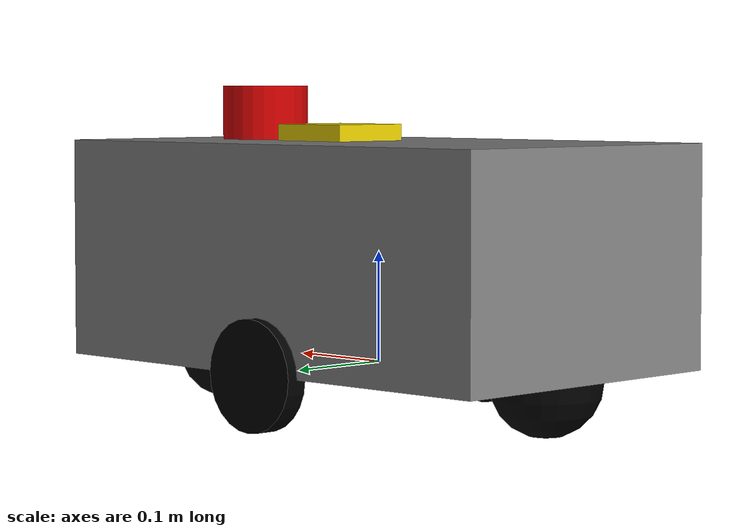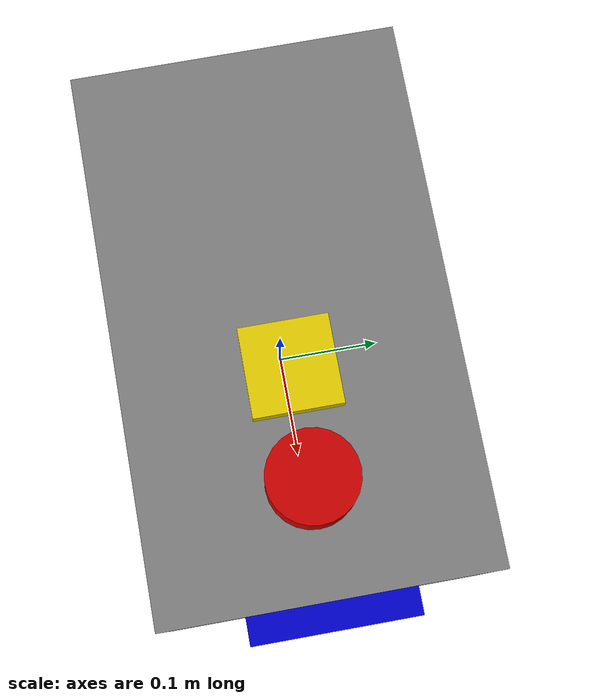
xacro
<?xml version="1.0"?>
<robot name="unknown_robot2" xmlns:xacro="http://www.ros.org/wiki/xacro">

  <!-- Materials -->
  <material name="black">
    <color rgba="0.0 0.0 0.0 1.0"/>
  </material>

  <material name="gray">
    <color rgba="0.5 0.5 0.5 1.0"/>
  </material>

  <material name="red">
    <color rgba="0.8 0.0 0.0 1.0"/>
  </material>

  <material name="blue">
    <color rgba="0.0 0.0 0.8 1.0"/>
  </material>

  <material name="green">
    <color rgba="0.0 0.8 0.0 1.0"/>
  </material>

  <material name="yellow">
    <color rgba="0.9 0.8 0.0 1.0"/>
  </material>

  <!-- Robot Properties -->
  <xacro:property name="base_length" value="0.50"/>
  <xacro:property name="base_width" value="0.30"/>
  <xacro:property name="base_height" value="0.20"/>

  <xacro:property name="wheel_radius" value="0.05"/>
  <xacro:property name="wheel_width" value="0.02"/>
  <xacro:property name="wheel_separation" value="0.30"/>

  <!-- Base Footprint -->
  <link name="base_footprint"/>

  <joint name="base_footprint_joint" type="fixed">
    <parent link="base_footprint"/>
    <child link="base_link"/>
    <origin xyz="0 0 0.10" rpy="0 0 0"/>
  </joint>

  <!-- Base Link -->
  <link name="base_link">
    <visual>
      <geometry>
        <box size="${base_length} ${base_width} ${base_height}"/>
      </geometry>
      <material name="gray"/>
    </visual>

    <collision>
      <geometry>
        <box size="${base_length} ${base_width} ${base_height}"/>
      </geometry>
    </collision>

    <inertial>
      <mass value="5.0"/>
      <origin xyz="0 0 0"/>
      <inertia
        ixx="0.02" ixy="0.0" ixz="0.0"
        iyy="0.02" iyz="0.0"
        izz="0.04"/>
    </inertial>
  </link>

  <!-- Left Drive Wheel -->
  <link name="left_wheel">
    <visual>
      <origin xyz="0 0 0" rpy="1.5708 0 0"/>
      <geometry>
        <cylinder radius="${wheel_radius}" length="${wheel_width}"/>
      </geometry>
      <material name="black"/>
    </visual>

    <collision>
      <origin xyz="0 0 0" rpy="1.5708 0 0"/>
      <geometry>
        <cylinder radius="${wheel_radius}" length="${wheel_width}"/>
      </geometry>
    </collision>

    <inertial>
      <mass value="0.2"/>
      <origin xyz="0 0 0"/>
      <inertia
        ixx="0.001" ixy="0.0" ixz="0.0"
        iyy="0.001" iyz="0.0"
        izz="0.002"/>
    </inertial>
  </link>

  <joint name="left_wheel_joint" type="continuous">
    <parent link="base_link"/>
    <child link="left_wheel"/>
    <origin xyz="0 0.15 -0.10" rpy="0 0 0"/>
    <axis xyz="0 1 0"/>
  </joint>

  <!-- Right Drive Wheel -->
  <link name="right_wheel">
    <visual>
      <origin xyz="0 0 0" rpy="1.5708 0 0"/>
      <geometry>
        <cylinder radius="${wheel_radius}" length="${wheel_width}"/>
      </geometry>
      <material name="black"/>
    </visual>

    <collision>
      <origin xyz="0 0 0" rpy="1.5708 0 0"/>
      <geometry>
        <cylinder radius="${wheel_radius}" length="${wheel_width}"/>
      </geometry>
    </collision>

    <inertial>
      <mass value="0.2"/>
      <origin xyz="0 0 0"/>
      <inertia
        ixx="0.001" ixy="0.0" ixz="0.0"
        iyy="0.001" iyz="0.0"
        izz="0.002"/>
    </inertial>
  </link>

  <joint name="right_wheel_joint" type="continuous">
    <parent link="base_link"/>
    <child link="right_wheel"/>
    <origin xyz="0 -0.15 -0.10" rpy="0 0 0"/>
    <axis xyz="0 1 0"/>
  </joint>

  <!-- Front Caster -->
  <link name="front_caster">
    <visual>
      <geometry>
        <sphere radius="0.05"/>
      </geometry>
      <material name="black"/>
    </visual>

    <collision>
      <geometry>
        <sphere radius="0.05"/>
      </geometry>
    </collision>

    <inertial>
      <mass value="0.1"/>
      <origin xyz="0 0 0"/>
      <inertia
        ixx="0.0005" ixy="0.0" ixz="0.0"
        iyy="0.0005" iyz="0.0"
        izz="0.0005"/>
    </inertial>
  </link>

  <joint name="front_caster_joint" type="fixed">
    <parent link="base_link"/>
    <child link="front_caster"/>
    <origin xyz="0.20 0 -0.10" rpy="0 0 0"/>
  </joint>

  <!-- Rear Caster -->
  <link name="rear_caster">
    <visual>
      <geometry>
        <sphere radius="0.05"/>
      </geometry>
      <material name="black"/>
    </visual>

    <collision>
      <geometry>
        <sphere radius="0.05"/>
      </geometry>
    </collision>

    <inertial>
      <mass value="0.1"/>
      <origin xyz="0 0 0"/>
      <inertia
        ixx="0.0005" ixy="0.0" ixz="0.0"
        iyy="0.0005" iyz="0.0"
        izz="0.0005"/>
    </inertial>
  </link>

  <joint name="rear_caster_joint" type="fixed">
    <parent link="base_link"/>
    <child link="rear_caster"/>
    <origin xyz="-0.20 0 -0.10" rpy="0 0 0"/>
  </joint>

  <!-- LiDAR Link -->
  <link name="lidar_link">
    <visual>
      <geometry>
        <cylinder radius="0.04" length="0.10"/>
      </geometry>
      <material name="red"/>
    </visual>

    <collision>
      <geometry>
        <cylinder radius="0.04" length="0.10"/>
      </geometry>
    </collision>

    <inertial>
      <mass value="0.15"/>
      <origin xyz="0 0 0"/>
      <inertia
        ixx="0.0002" ixy="0.0" ixz="0.0"
        iyy="0.0002" iyz="0.0"
        izz="0.0002"/>
    </inertial>
  </link>

  <joint name="lidar_joint" type="fixed">
    <parent link="base_link"/>
    <child link="lidar_link"/>
    <origin xyz="0.15 0 0.10" rpy="0 0 0"/>
  </joint>

  <!-- IMU Link -->
  <link name="imu_link">
    <visual>
      <geometry>
        <box size="0.04 0.04 0.02"/>
      </geometry>
      <material name="green"/>
    </visual>

    <collision>
      <geometry>
        <box size="0.04 0.04 0.02"/>
      </geometry>
    </collision>

    <inertial>
      <mass value="0.05"/>
      <origin xyz="0 0 0"/>
      <inertia
        ixx="0.00005" ixy="0.0" ixz="0.0"
        iyy="0.00005" iyz="0.0"
        izz="0.00005"/>
    </inertial>
  </link>

  <joint name="imu_joint" type="fixed">
    <parent link="base_link"/>
    <child link="imu_link"/>
    <origin xyz="0 0 0.08" rpy="0 0 0"/>
  </joint>

  <!-- Depth Camera Link -->
  <!-- Replaces old camera position -->
  <link name="depth_camera_link">
    <visual>
      <geometry>
        <box size="0.05 0.15 0.05"/>
      </geometry>
      <material name="blue"/>
    </visual>

    <collision>
      <geometry>
        <box size="0.05 0.15 0.05"/>
      </geometry>
    </collision>

    <inertial>
      <mass value="0.2"/>
      <origin xyz="0 0 0"/>
      <inertia
        ixx="0.001" ixy="0.0" ixz="0.0"
        iyy="0.001" iyz="0.0"
        izz="0.002"/>
    </inertial>
  </link>

  <joint name="depth_camera_joint" type="fixed">
    <parent link="base_link"/>
    <child link="depth_camera_link"/>
    <origin xyz="0.25 0 0.05" rpy="0 0 0"/>
  </joint>

  <!-- ROS optical frame: z forward, x right, y down -->
  <link name="depth_camera_optical_frame"/>

  <joint name="depth_camera_optical_joint" type="fixed">
    <parent link="depth_camera_link"/>
    <child link="depth_camera_optical_frame"/>
    <origin xyz="0 0 0" rpy="-1.5708 0 -1.5708"/>
  </joint>

  <!-- GPS / NavSat Link -->
  <link name="gps_link">
    <visual>
      <geometry>
        <box size="0.08 0.08 0.03"/>
      </geometry>
      <material name="yellow"/>
    </visual>

    <collision>
      <geometry>
        <box size="0.08 0.08 0.03"/>
      </geometry>
    </collision>

    <inertial>
      <mass value="0.1"/>
      <origin xyz="0 0 0"/>
      <inertia
        ixx="0.0001" ixy="0.0" ixz="0.0"
        iyy="0.0001" iyz="0.0"
        izz="0.0001"/>
    </inertial>
  </link>

  <joint name="gps_joint" type="fixed">
    <parent link="base_link"/>
    <child link="gps_link"/>
    <origin xyz="0.05 0 0.10" rpy="0 0 0"/>
  </joint>

  <!-- Gazebo Diff Drive Plugin for ros_gz / Gazebo Harmonic -->
  <gazebo>
    <plugin
      filename="gz-sim-diff-drive-system"
      name="gz::sim::systems::DiffDrive">

      <left_joint>left_wheel_joint</left_joint>
      <right_joint>right_wheel_joint</right_joint>

      <wheel_separation>${wheel_separation}</wheel_separation>
      <wheel_radius>${wheel_radius}</wheel_radius>

      <topic>/cmd_vel</topic>
      <odom_topic>/odom</odom_topic>
      <tf_topic>/tf</tf_topic>

      <frame_id>odom</frame_id>
      <child_frame_id>base_footprint</child_frame_id>

      <odom_publish_frequency>50</odom_publish_frequency>

    </plugin>
  </gazebo>

  <!-- Gazebo LiDAR Sensor -->
  <!-- Important: visualize=true shows laser rays in Gazebo -->
  <gazebo reference="lidar_link">
    <sensor name="lidar_sensor" type="gpu_lidar">
      <always_on>true</always_on>
      <update_rate>30</update_rate>
      <visualize>true</visualize>
      <topic>/scan</topic>
      <gz_frame_id>lidar_link</gz_frame_id>

      <ray>
        <scan>
          <horizontal>
            <!-- 720 samples gives smoother laser visualization -->
            <samples>720</samples>
            <resolution>1.0</resolution>

            <!-- Full 360 degree LiDAR -->
            <min_angle>-1.57079633</min_angle>
            <max_angle>1.57079633</max_angle>
          </horizontal>
        </scan>

        <range>
          <min>0.20</min>
          <max>10.0</max>
          <resolution>0.01</resolution>
        </range>
      </ray>
    </sensor>
  </gazebo>

  <!-- Gazebo IMU Sensor -->
  <gazebo reference="imu_link">
    <sensor name="imu_sensor" type="imu">
      <always_on>true</always_on>
      <update_rate>100</update_rate>
      <visualize>true</visualize>
      <topic>/imu</topic>
    </sensor>
  </gazebo>

  <!-- Gazebo RGBD / Depth Camera Sensor -->
  <gazebo reference="depth_camera_link">
    <sensor name="depth_camera_sensor" type="rgbd_camera">
      <always_on>true</always_on>
      <update_rate>30</update_rate>
      <visualize>true</visualize>
      <topic>/camera/depth</topic>

      <camera>
        <horizontal_fov>1.5708</horizontal_fov>

        <image>
          <width>640</width>
          <height>480</height>
          <format>R8G8B8</format>
        </image>

        <clip>
          <near>0.05</near>
          <far>10.0</far>
        </clip>
      </camera>
    </sensor>
  </gazebo>

  <!-- Gazebo GPS / NavSat Sensor -->
  <!-- Empty world must have spherical_coordinates for GPS -->
  <gazebo reference="gps_link">
    <sensor name="gps_sensor" type="navsat">
      <always_on>true</always_on>
      <update_rate>10</update_rate>
      <visualize>true</visualize>
      <topic>/gps/fix</topic>
    </sensor>
  </gazebo>

  <!-- Gazebo Materials -->
  <gazebo reference="base_link">
    <material>Gazebo/White</material>
  </gazebo>

  <gazebo reference="left_wheel">
    <material>Gazebo/Black</material>
  </gazebo>

  <gazebo reference="right_wheel">
    <material>Gazebo/Black</material>
  </gazebo>

  <gazebo reference="front_caster">
    <material>Gazebo/Black</material>
  </gazebo>

  <gazebo reference="rear_caster">
    <material>Gazebo/Black</material>
  </gazebo>

  <gazebo reference="lidar_link">
    <material>Gazebo/Red</material>
  </gazebo>

  <gazebo reference="imu_link">
    <material>Gazebo/Green</material>
  </gazebo>

  <gazebo reference="depth_camera_link">
    <material>Gazebo/Blue</material>
  </gazebo>

  <gazebo reference="gps_link">
    <material>Gazebo/Yellow</material>
  </gazebo>

</robot>
